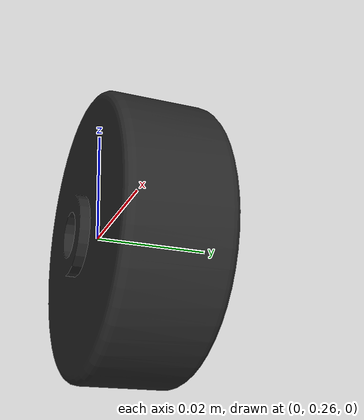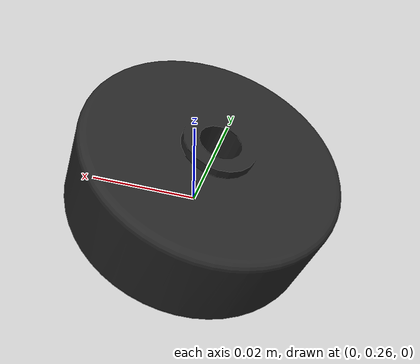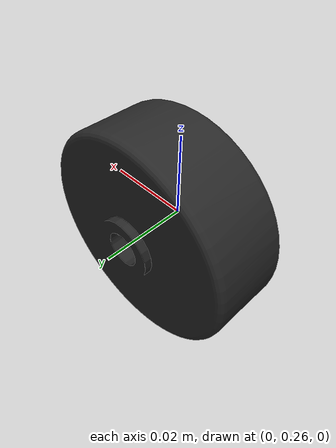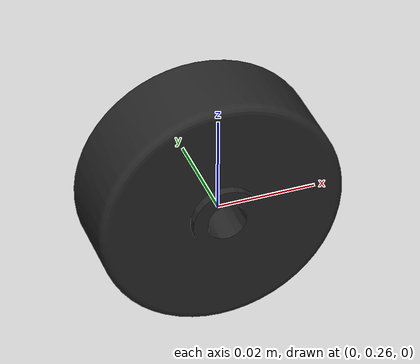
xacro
<robot name="RR_Wheel_link"><link name="RR_Wheel_link">
    <inertial>
      <origin rpy="0 0 0" xyz="-0.00160662476834383 -2.59238516814309E-06 1.49950507030127E-05" />
      <mass value="3.83427523968864" />
      <inertia ixx="0.0296525526652264" ixy="1.5100019082583E-06" ixz="2.35765651707649E-06" iyy="0.0163749526901628" iyz="1.22544631738128E-06" izz="0.0163720507270359" />
    </inertial>
    <visual>
      <origin rpy="0 0 0" xyz="0 0 0" />
      <geometry>
        <mesh filename="package://robotican_description/komodo/meshes/RR_Wheel_link.STL" />
      </geometry>
      <material name="">
        <color rgba="0.15 0.15 0.15 1" />
      </material>
    </visual>
    <collision>
      <origin rpy="0 1.5 0" xyz="0 0 0" />
      <geometry>

        <cylinder length="0.05" radius="0.1" />
      </geometry>
    </collision>
  </link>
  </robot>
